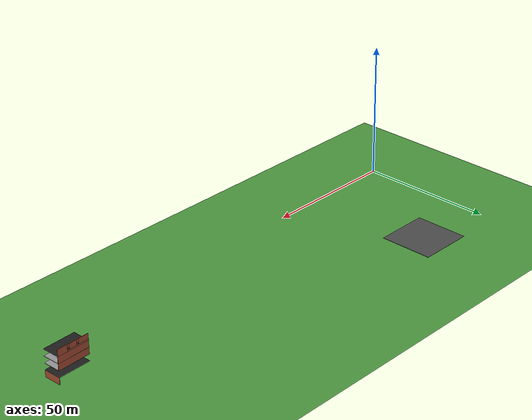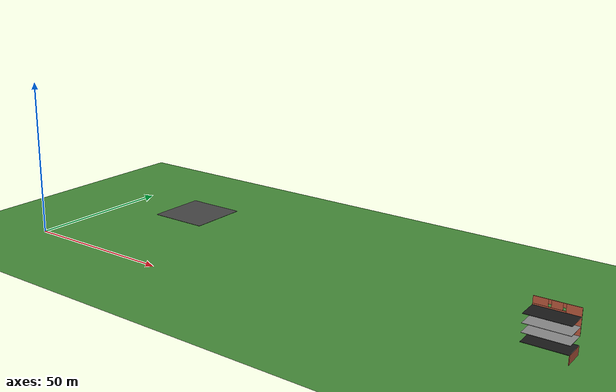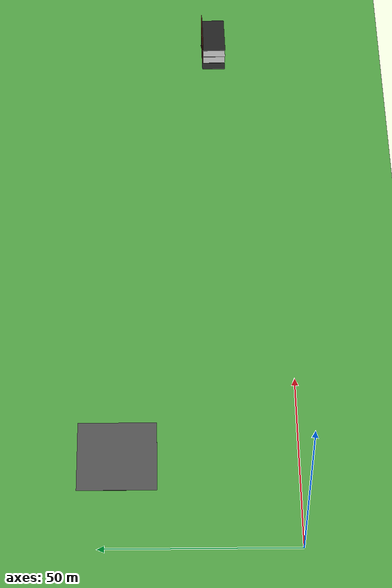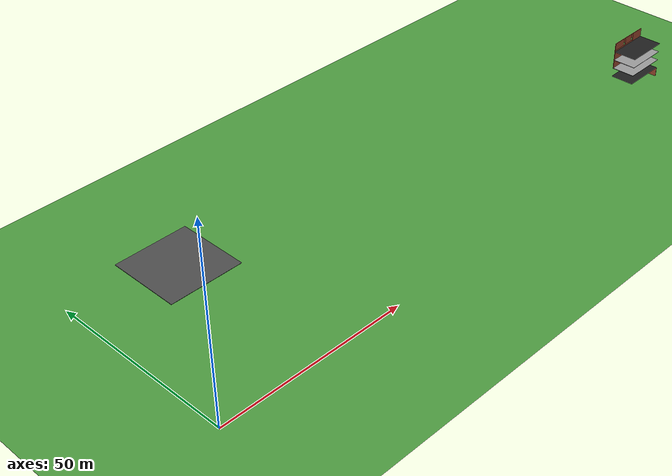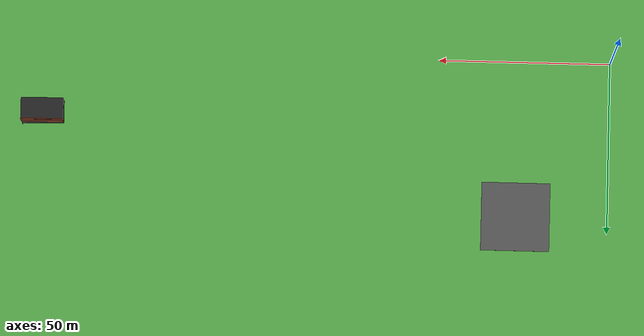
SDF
<sdf version="1.7">
 <world name="default">
  <model name="ground_plane">
   <static>1</static>
   <link name="link">
    <collision name="collision">
     <geometry><plane><normal>0 0 1</normal><size>100 100</size></plane></geometry>
     <surface>
      <contact><collide_bitmask>65535</collide_bitmask></contact>
      <friction><ode><mu>100</mu><mu2>50</mu2></ode></friction>
     </surface>
    </collision>
    <visual name="grass">
     <pose>0 0 -0.1 0 -0 0</pose>
     <cast_shadows>0</cast_shadows>
     <geometry><plane><normal>0 0 1</normal><size>1000 1000</size></plane></geometry>
     <material>
      <script><uri>file://media/materials/scripts/gazebo.material</uri><name>Gazebo/Grass</name></script>
     </material>
    </visual>
   </link>
  </model>
  <model name="asphalt_plane">
   <static>1</static>
   <link name="link">
    <collision name="collision"><geometry><box><size>20 20 0.1</size></box></geometry></collision>
    <visual name="visual">
     <cast_shadows>0</cast_shadows>
     <geometry><box><size>20 20 0.1</size></box></geometry>
     <material>
      <script>
       <uri>model://asphalt_plane/materials/scripts</uri>
       <uri>model://asphalt_plane/materials/textures</uri>
       <name>vrc/asphalt</name>
      </script>
     </material>
    </visual>
   </link>
   <pose>26.7323 45.4974 0 0 -0 0</pose>
  </model>
  <model name="my_building_1_clone">
   <link name="Floor_13">
    <pose>-4.12557 0 2.5 0 -0 0</pose>
    <inertial>
     <mass>1</mass>
     <inertia><ixx>1</ixx><ixy>0</ixy><ixz>0</ixz><iyy>1</iyy><iyz>0</iyz><izz>1</izz></inertia>
    </inertial>
    <visual name="Floor_13_Visual">
     <pose>0 0 0.05 0 -0 0</pose>
     <geometry><box><size>6.5 12.25 0.1</size></box></geometry>
     <material>
      <script><uri>file://media/materials/scripts/gazebo.material</uri><name>Gazebo/Black</name></script>
      <ambient>1 1 1 1</ambient>
      <shader type="pixel"><normal_map>__default__</normal_map></shader>
      <diffuse>0 0 0 1</diffuse>
      <specular>0.1 0.1 0.1 1</specular>
      <emissive>0 0 0 1</emissive>
     </material>
     <meta><layer>1</layer></meta>
    </visual>
    <collision name="Floor_13_Collision">
     <pose>0 0 0.05 0 -0 0</pose>
     <geometry><box><size>6.5 12.25 0.1</size></box></geometry>
     <surface>
      <friction>
       <ode><mu>1</mu><mu2>1</mu2><fdir1>0 0 0</fdir1><slip1>0</slip1><slip2>0</slip2></ode>
       <torsional>
        <coefficient>1</coefficient>
        <patch_radius>0</patch_radius>
        <surface_radius>0</surface_radius>
        <use_patch_radius>1</use_patch_radius>
        <ode><slip>0</slip></ode>
       </torsional>
      </friction>
      <bounce><restitution_coefficient>0</restitution_coefficient><threshold>1e+06</threshold></bounce>
      <contact>
       <collide_without_contact>0</collide_without_contact>
       <collide_without_contact_bitmask>1</collide_without_contact_bitmask>
       <collide_bitmask>1</collide_bitmask>
       <ode>
        <soft_cfm>0</soft_cfm>
        <soft_erp>0.2</soft_erp>
        <kp>1e+13</kp>
        <kd>1</kd>
        <max_vel>0.01</max_vel>
        <min_depth>0</min_depth>
       </ode>
       <bullet>
        <split_impulse>1</split_impulse>
        <split_impulse_penetration_threshold>-0.01</split_impulse_penetration_threshold>
        <soft_cfm>0</soft_cfm>
        <soft_erp>0.2</soft_erp>
        <kp>1e+13</kp>
        <kd>1</kd>
       </bullet>
      </contact>
     </surface>
    </collision>
   </link>
   <link name="Floor_14">
    <pose>-4.12557 0 5 0 -0 0</pose>
    <visual name="Floor_14_Visual">
     <pose>0 0 0.05 0 -0 0</pose>
     <geometry><box><size>6.5 12.25 0.1</size></box></geometry>
     <material>
      <script><uri>file://media/materials/scripts/gazebo.material</uri><name>Gazebo/Grey</name></script>
      <ambient>1 1 1 1</ambient>
      <shader type="pixel"/>
     </material>
     <meta><layer>2</layer></meta>
    </visual>
    <collision name="Floor_14_Collision">
     <pose>0 0 0.05 0 -0 0</pose>
     <geometry><box><size>6.5 12.25 0.1</size></box></geometry>
     <surface>
      <friction>
       <ode><mu>1</mu><mu2>1</mu2><fdir1>0 0 0</fdir1><slip1>0</slip1><slip2>0</slip2></ode>
       <torsional>
        <coefficient>1</coefficient>
        <patch_radius>0</patch_radius>
        <surface_radius>0</surface_radius>
        <use_patch_radius>1</use_patch_radius>
        <ode><slip>0</slip></ode>
       </torsional>
      </friction>
      <bounce><restitution_coefficient>0</restitution_coefficient><threshold>1e+06</threshold></bounce>
      <contact>
       <collide_without_contact>0</collide_without_contact>
       <collide_without_contact_bitmask>1</collide_without_contact_bitmask>
       <collide_bitmask>1</collide_bitmask>
       <ode>
        <soft_cfm>0</soft_cfm>
        <soft_erp>0.2</soft_erp>
        <kp>1e+13</kp>
        <kd>1</kd>
        <max_vel>0.01</max_vel>
        <min_depth>0</min_depth>
       </ode>
       <bullet>
        <split_impulse>1</split_impulse>
        <split_impulse_penetration_threshold>-0.01</split_impulse_penetration_threshold>
        <soft_cfm>0</soft_cfm>
        <soft_erp>0.2</soft_erp>
        <kp>1e+13</kp>
        <kd>1</kd>
       </bullet>
      </contact>
     </surface>
    </collision>
   </link>
   <link name="Floor_15">
    <pose>-4.12557 0 7.5 0 -0 0</pose>
    <visual name="Floor_15_Visual">
     <pose>0 0 0.05 0 -0 0</pose>
     <geometry><box><size>6.5 12.25 0.1</size></box></geometry>
     <material>
      <script><uri>file://media/materials/scripts/gazebo.material</uri><name>Gazebo/Grey</name></script>
      <ambient>1 1 1 1</ambient>
      <shader type="pixel"/>
     </material>
     <meta><layer>3</layer></meta>
    </visual>
    <collision name="Floor_15_Collision">
     <pose>0 0 0.05 0 -0 0</pose>
     <geometry><box><size>6.5 12.25 0.1</size></box></geometry>
     <surface>
      <friction>
       <ode><mu>1</mu><mu2>1</mu2><fdir1>0 0 0</fdir1><slip1>0</slip1><slip2>0</slip2></ode>
       <torsional>
        <coefficient>1</coefficient>
        <patch_radius>0</patch_radius>
        <surface_radius>0</surface_radius>
        <use_patch_radius>1</use_patch_radius>
        <ode><slip>0</slip></ode>
       </torsional>
      </friction>
      <bounce><restitution_coefficient>0</restitution_coefficient><threshold>1e+06</threshold></bounce>
      <contact>
       <collide_without_contact>0</collide_without_contact>
       <collide_without_contact_bitmask>1</collide_without_contact_bitmask>
       <collide_bitmask>1</collide_bitmask>
       <ode>
        <soft_cfm>0</soft_cfm>
        <soft_erp>0.2</soft_erp>
        <kp>1e+13</kp>
        <kd>1</kd>
        <max_vel>0.01</max_vel>
        <min_depth>0</min_depth>
       </ode>
       <bullet>
        <split_impulse>1</split_impulse>
        <split_impulse_penetration_threshold>-0.01</split_impulse_penetration_threshold>
        <soft_cfm>0</soft_cfm>
        <soft_erp>0.2</soft_erp>
        <kp>1e+13</kp>
        <kd>1</kd>
       </bullet>
      </contact>
     </surface>
    </collision>
   </link>
   <link name="Floor_16">
    <pose>-4.12557 0 10 0 -0 0</pose>
    <inertial>
     <mass>1</mass>
     <inertia><ixx>1</ixx><ixy>0</ixy><ixz>0</ixz><iyy>1</iyy><iyz>0</iyz><izz>1</izz></inertia>
    </inertial>
    <visual name="Floor_16_Visual">
     <pose>0 0 0.05 0 -0 0</pose>
     <geometry><box><size>6.5 12.25 0.1</size></box></geometry>
     <material>
      <script><uri>file://media/materials/scripts/gazebo.material</uri><name>Gazebo/Black</name></script>
      <ambient>1 1 1 1</ambient>
      <shader type="pixel"><normal_map>__default__</normal_map></shader>
      <diffuse>0 0 0 1</diffuse>
      <specular>0.1 0.1 0.1 1</specular>
      <emissive>0 0 0 1</emissive>
     </material>
     <meta><layer>4</layer></meta>
    </visual>
    <collision name="Floor_16_Collision">
     <pose>0 0 0.05 0 -0 0</pose>
     <geometry><box><size>6.5 12.25 0.1</size></box></geometry>
     <surface>
      <friction>
       <ode><mu>1</mu><mu2>1</mu2><fdir1>0 0 0</fdir1><slip1>0</slip1><slip2>0</slip2></ode>
       <torsional>
        <coefficient>1</coefficient>
        <patch_radius>0</patch_radius>
        <surface_radius>0</surface_radius>
        <use_patch_radius>1</use_patch_radius>
        <ode><slip>0</slip></ode>
       </torsional>
      </friction>
      <bounce><restitution_coefficient>0</restitution_coefficient><threshold>1e+06</threshold></bounce>
      <contact>
       <collide_without_contact>0</collide_without_contact>
       <collide_without_contact_bitmask>1</collide_without_contact_bitmask>
       <collide_bitmask>1</collide_bitmask>
       <ode>
        <soft_cfm>0</soft_cfm>
        <soft_erp>0.2</soft_erp>
        <kp>1e+13</kp>
        <kd>1</kd>
        <max_vel>0.01</max_vel>
        <min_depth>0</min_depth>
       </ode>
       <bullet>
        <split_impulse>1</split_impulse>
        <split_impulse_penetration_threshold>-0.01</split_impulse_penetration_threshold>
        <soft_cfm>0</soft_cfm>
        <soft_erp>0.2</soft_erp>
        <kp>1e+13</kp>
        <kd>1</kd>
       </bullet>
      </contact>
     </surface>
    </collision>
   </link>
   <link name="Wall_18">
    <pose>-4.12557 -6.05 0 0 -0 0</pose>
    <visual name="Wall_18_Visual">
     <pose>0 0 1.25 0 -0 0</pose>
     <geometry><box><size>6.5 0.15 2.5</size></box></geometry>
     <material>
      <script><uri>file://media/materials/scripts/gazebo.material</uri><name>Gazebo/Bricks</name></script>
      <ambient>1 1 1 1</ambient>
      <shader type="pixel"/>
     </material>
     <meta><layer>0</layer></meta>
    </visual>
    <collision name="Wall_18_Collision">
     <pose>0 0 1.25 0 -0 0</pose>
     <geometry><box><size>6.5 0.15 2.5</size></box></geometry>
     <surface>
      <friction>
       <ode><mu>1</mu><mu2>1</mu2><fdir1>0 0 0</fdir1><slip1>0</slip1><slip2>0</slip2></ode>
       <torsional>
        <coefficient>1</coefficient>
        <patch_radius>0</patch_radius>
        <surface_radius>0</surface_radius>
        <use_patch_radius>1</use_patch_radius>
        <ode><slip>0</slip></ode>
       </torsional>
      </friction>
      <bounce><restitution_coefficient>0</restitution_coefficient><threshold>1e+06</threshold></bounce>
      <contact>
       <collide_without_contact>0</collide_without_contact>
       <collide_without_contact_bitmask>1</collide_without_contact_bitmask>
       <collide_bitmask>1</collide_bitmask>
       <ode>
        <soft_cfm>0</soft_cfm>
        <soft_erp>0.2</soft_erp>
        <kp>1e+13</kp>
        <kd>1</kd>
        <max_vel>0.01</max_vel>
        <min_depth>0</min_depth>
       </ode>
       <bullet>
        <split_impulse>1</split_impulse>
        <split_impulse_penetration_threshold>-0.01</split_impulse_penetration_threshold>
        <soft_cfm>0</soft_cfm>
        <soft_erp>0.2</soft_erp>
        <kp>1e+13</kp>
        <kd>1</kd>
       </bullet>
      </contact>
     </surface>
    </collision>
   </link>
   <link name="Wall_80">
    <pose>-0.950574 0 5 0 -0 1.5708</pose>
    <visual name="Wall_80_Visual">
     <pose>0 0 1.25 0 -0 0</pose>
     <geometry><box><size>12.25 0.15 2.5</size></box></geometry>
     <material>
      <script><uri>file://media/materials/scripts/gazebo.material</uri><name>Gazebo/Bricks</name></script>
      <ambient>1 1 1 1</ambient>
      <shader type="pixel"/>
     </material>
     <meta><layer>2</layer></meta>
    </visual>
    <collision name="Wall_80_Collision">
     <pose>0 0 1.25 0 -0 0</pose>
     <geometry><box><size>12.25 0.15 2.5</size></box></geometry>
     <surface>
      <friction>
       <ode><mu>1</mu><mu2>1</mu2><fdir1>0 0 0</fdir1><slip1>0</slip1><slip2>0</slip2></ode>
       <torsional>
        <coefficient>1</coefficient>
        <patch_radius>0</patch_radius>
        <surface_radius>0</surface_radius>
        <use_patch_radius>1</use_patch_radius>
        <ode><slip>0</slip></ode>
       </torsional>
      </friction>
      <bounce><restitution_coefficient>0</restitution_coefficient><threshold>1e+06</threshold></bounce>
      <contact>
       <collide_without_contact>0</collide_without_contact>
       <collide_without_contact_bitmask>1</collide_without_contact_bitmask>
       <collide_bitmask>1</collide_bitmask>
       <ode>
        <soft_cfm>0</soft_cfm>
        <soft_erp>0.2</soft_erp>
        <kp>1e+13</kp>
        <kd>1</kd>
        <max_vel>0.01</max_vel>
        <min_depth>0</min_depth>
       </ode>
       <bullet>
        <split_impulse>1</split_impulse>
        <split_impulse_penetration_threshold>-0.01</split_impulse_penetration_threshold>
        <soft_cfm>0</soft_cfm>
        <soft_erp>0.2</soft_erp>
        <kp>1e+13</kp>
        <kd>1</kd>
       </bullet>
      </contact>
     </surface>
    </collision>
   </link>
   <link name="Wall_84">
    <pose>-0.950574 0 7.5 0 -0 1.5708</pose>
    <visual name="Wall_84_Visual">
     <pose>0 0 1.25 0 -0 0</pose>
     <geometry><box><size>12.25 0.15 2.5</size></box></geometry>
     <material>
      <script><uri>file://media/materials/scripts/gazebo.material</uri><name>Gazebo/Bricks</name></script>
      <ambient>1 1 1 1</ambient>
      <shader type="pixel"/>
     </material>
     <meta><layer>3</layer></meta>
    </visual>
    <collision name="Wall_84_Collision">
     <pose>0 0 1.25 0 -0 0</pose>
     <geometry><box><size>12.25 0.15 2.5</size></box></geometry>
     <surface>
      <friction>
       <ode><mu>1</mu><mu2>1</mu2><fdir1>0 0 0</fdir1><slip1>0</slip1><slip2>0</slip2></ode>
       <torsional>
        <coefficient>1</coefficient>
        <patch_radius>0</patch_radius>
        <surface_radius>0</surface_radius>
        <use_patch_radius>1</use_patch_radius>
        <ode><slip>0</slip></ode>
       </torsional>
      </friction>
      <bounce><restitution_coefficient>0</restitution_coefficient><threshold>1e+06</threshold></bounce>
      <contact>
       <collide_without_contact>0</collide_without_contact>
       <collide_without_contact_bitmask>1</collide_without_contact_bitmask>
       <collide_bitmask>1</collide_bitmask>
       <ode>
        <soft_cfm>0</soft_cfm>
        <soft_erp>0.2</soft_erp>
        <kp>1e+13</kp>
        <kd>1</kd>
        <max_vel>0.01</max_vel>
        <min_depth>0</min_depth>
       </ode>
       <bullet>
        <split_impulse>1</split_impulse>
        <split_impulse_penetration_threshold>-0.01</split_impulse_penetration_threshold>
        <soft_cfm>0</soft_cfm>
        <soft_erp>0.2</soft_erp>
        <kp>1e+13</kp>
        <kd>1</kd>
       </bullet>
      </contact>
     </surface>
    </collision>
   </link>
   <link name="Wall_88">
    <pose>-0.950574 0 10 0 -0 1.5708</pose>
    <visual name="Wall_88_Visual_1">
     <pose>1.94755 0 0.25 0 -0 0</pose>
     <geometry><box><size>8.35491 0.15 0.5</size></box></geometry>
     <material>
      <script><uri>file://media/materials/scripts/gazebo.material</uri><name>Gazebo/Bricks</name></script>
      <ambient>1 1 1 1</ambient>
      <shader type="pixel"/>
     </material>
     <meta><layer>4</layer></meta>
    </visual>
    <visual name="Wall_88_Visual_2">
     <pose>-0.007793 0 1.5 0 -0 0</pose>
     <geometry><box><size>2.84423 0.15 2</size></box></geometry>
     <material>
      <script><uri>file://media/materials/scripts/gazebo.material</uri><name>Gazebo/Bricks</name></script>
      <ambient>1 1 1 1</ambient>
      <shader type="pixel"/>
     </material>
     <meta><layer>4</layer></meta>
    </visual>
    <visual name="Wall_88_Visual_4">
     <pose>-1.82991 0 1.9 0 -0 0</pose>
     <geometry><box><size>0.8 0.15 1.2</size></box></geometry>
     <material>
      <script><uri>file://media/materials/scripts/gazebo.material</uri><name>Gazebo/Bricks</name></script>
      <ambient>1 1 1 1</ambient>
      <shader type="pixel"/>
     </material>
     <meta><layer>4</layer></meta>
    </visual>
    <visual name="Wall_88_Visual_5">
     <pose>1.81432 0 1.9 0 -0 0</pose>
     <geometry><box><size>0.8 0.15 1.2</size></box></geometry>
     <material>
      <script><uri>file://media/materials/scripts/gazebo.material</uri><name>Gazebo/Bricks</name></script>
      <ambient>1 1 1 1</ambient>
      <shader type="pixel"/>
     </material>
     <meta><layer>4</layer></meta>
    </visual>
    <visual name="Wall_88_Visual_3">
     <pose>4.16966 0 1.5 0 -0 0</pose>
     <geometry><box><size>3.91068 0.15 2</size></box></geometry>
     <material>
      <script><uri>file://media/materials/scripts/gazebo.material</uri><name>Gazebo/Bricks</name></script>
      <ambient>1 1 1 1</ambient>
      <shader type="pixel"/>
     </material>
     <meta><layer>4</layer></meta>
    </visual>
    <visual name="Wall_88_Visual_0">
     <pose>-4.17745 0 1.25 0 -0 0</pose>
     <geometry><box><size>3.89509 0.15 2.5</size></box></geometry>
     <material>
      <script><uri>file://media/materials/scripts/gazebo.material</uri><name>Gazebo/Bricks</name></script>
      <ambient>1 1 1 1</ambient>
      <shader type="pixel"/>
     </material>
     <meta><layer>4</layer></meta>
    </visual>
    <collision name="Wall_88_Collision_4">
     <pose>-1.82991 0 1.9 0 -0 0</pose>
     <geometry><box><size>0.8 0.15 1.2</size></box></geometry>
     <surface>
      <friction>
       <ode><mu>1</mu><mu2>1</mu2><fdir1>0 0 0</fdir1><slip1>0</slip1><slip2>0</slip2></ode>
       <torsional>
        <coefficient>1</coefficient>
        <patch_radius>0</patch_radius>
        <surface_radius>0</surface_radius>
        <use_patch_radius>1</use_patch_radius>
        <ode><slip>0</slip></ode>
       </torsional>
      </friction>
      <bounce><restitution_coefficient>0</restitution_coefficient><threshold>1e+06</threshold></bounce>
      <contact>
       <collide_without_contact>0</collide_without_contact>
       <collide_without_contact_bitmask>1</collide_without_contact_bitmask>
       <collide_bitmask>1</collide_bitmask>
       <ode>
        <soft_cfm>0</soft_cfm>
        <soft_erp>0.2</soft_erp>
        <kp>1e+13</kp>
        <kd>1</kd>
        <max_vel>0.01</max_vel>
        <min_depth>0</min_depth>
       </ode>
       <bullet>
        <split_impulse>1</split_impulse>
        <split_impulse_penetration_threshold>-0.01</split_impulse_penetration_threshold>
        <soft_cfm>0</soft_cfm>
        <soft_erp>0.2</soft_erp>
        <kp>1e+13</kp>
        <kd>1</kd>
       </bullet>
      </contact>
     </surface>
    </collision>
    <collision name="Wall_88_Collision_5">
     <pose>1.81432 0 1.9 0 -0 0</pose>
     <geometry><box><size>0.8 0.15 1.2</size></box></geometry>
     <surface>
      <friction>
       <ode><mu>1</mu><mu2>1</mu2><fdir1>0 0 0</fdir1><slip1>0</slip1><slip2>0</slip2></ode>
       <torsional>
        <coefficient>1</coefficient>
        <patch_radius>0</patch_radius>
        <surface_radius>0</surface_radius>
        <use_patch_radius>1</use_patch_radius>
        <ode><slip>0</slip></ode>
       </torsional>
      </friction>
      <bounce><restitution_coefficient>0</restitution_coefficient><threshold>1e+06</threshold></bounce>
      <contact>
       <collide_without_contact>0</collide_without_contact>
       <collide_without_contact_bitmask>1</collide_without_contact_bitmask>
       <collide_bitmask>1</collide_bitmask>
       <ode>
        <soft_cfm>0</soft_cfm>
        <soft_erp>0.2</soft_erp>
        <kp>1e+13</kp>
        <kd>1</kd>
        <max_vel>0.01</max_vel>
        <min_depth>0</min_depth>
       </ode>
       <bullet>
        <split_impulse>1</split_impulse>
        <split_impulse_penetration_threshold>-0.01</split_impulse_penetration_threshold>
        <soft_cfm>0</soft_cfm>
        <soft_erp>0.2</soft_erp>
        <kp>1e+13</kp>
        <kd>1</kd>
       </bullet>
      </contact>
     </surface>
    </collision>
    <collision name="Wall_88_Collision_2">
     <pose>-0.007793 0 1.5 0 -0 0</pose>
     <geometry><box><size>2.84423 0.15 2</size></box></geometry>
     <surface>
      <friction>
       <ode><mu>1</mu><mu2>1</mu2><fdir1>0 0 0</fdir1><slip1>0</slip1><slip2>0</slip2></ode>
       <torsional>
        <coefficient>1</coefficient>
        <patch_radius>0</patch_radius>
        <surface_radius>0</surface_radius>
        <use_patch_radius>1</use_patch_radius>
        <ode><slip>0</slip></ode>
       </torsional>
      </friction>
      <bounce><restitution_coefficient>0</restitution_coefficient><threshold>1e+06</threshold></bounce>
      <contact>
       <collide_without_contact>0</collide_without_contact>
       <collide_without_contact_bitmask>1</collide_without_contact_bitmask>
       <collide_bitmask>1</collide_bitmask>
       <ode>
        <soft_cfm>0</soft_cfm>
        <soft_erp>0.2</soft_erp>
        <kp>1e+13</kp>
        <kd>1</kd>
        <max_vel>0.01</max_vel>
        <min_depth>0</min_depth>
       </ode>
       <bullet>
        <split_impulse>1</split_impulse>
        <split_impulse_penetration_threshold>-0.01</split_impulse_penetration_threshold>
        <soft_cfm>0</soft_cfm>
        <soft_erp>0.2</soft_erp>
        <kp>1e+13</kp>
        <kd>1</kd>
       </bullet>
      </contact>
     </surface>
    </collision>
    <collision name="Wall_88_Collision_0">
     <pose>-4.17745 0 1.25 0 -0 0</pose>
     <geometry><box><size>3.89509 0.15 2.5</size></box></geometry>
     <surface>
      <friction>
       <ode><mu>1</mu><mu2>1</mu2><fdir1>0 0 0</fdir1><slip1>0</slip1><slip2>0</slip2></ode>
       <torsional>
        <coefficient>1</coefficient>
        <patch_radius>0</patch_radius>
        <surface_radius>0</surface_radius>
        <use_patch_radius>1</use_patch_radius>
        <ode><slip>0</slip></ode>
       </torsional>
      </friction>
      <bounce><restitution_coefficient>0</restitution_coefficient><threshold>1e+06</threshold></bounce>
      <contact>
       <collide_without_contact>0</collide_without_contact>
       <collide_without_contact_bitmask>1</collide_without_contact_bitmask>
       <collide_bitmask>1</collide_bitmask>
       <ode>
        <soft_cfm>0</soft_cfm>
        <soft_erp>0.2</soft_erp>
        <kp>1e+13</kp>
        <kd>1</kd>
        <max_vel>0.01</max_vel>
        <min_depth>0</min_depth>
       </ode>
       <bullet>
        <split_impulse>1</split_impulse>
        <split_impulse_penetration_threshold>-0.01</split_impulse_penetration_threshold>
        <soft_cfm>0</soft_cfm>
        <soft_erp>0.2</soft_erp>
        <kp>1e+13</kp>
        <kd>1</kd>
       </bullet>
      </contact>
     </surface>
    </collision>
    <collision name="Wall_88_Collision_1">
     <pose>1.94755 0 0.25 0 -0 0</pose>
     <geometry><box><size>8.35491 0.15 0.5</size></box></geometry>
     <surface>
      <friction>
       <ode><mu>1</mu><mu2>1</mu2><fdir1>0 0 0</fdir1><slip1>0</slip1><slip2>0</slip2></ode>
       <torsional>
        <coefficient>1</coefficient>
        <patch_radius>0</patch_radius>
        <surface_radius>0</surface_radius>
        <use_patch_radius>1</use_patch_radius>
        <ode><slip>0</slip></ode>
       </torsional>
      </friction>
      <bounce><restitution_coefficient>0</restitution_coefficient><threshold>1e+06</threshold></bounce>
      <contact>
       <collide_without_contact>0</collide_without_contact>
       <collide_without_contact_bitmask>1</collide_without_contact_bitmask>
       <collide_bitmask>1</collide_bitmask>
       <ode>
        <soft_cfm>0</soft_cfm>
        <soft_erp>0.2</soft_erp>
        <kp>1e+13</kp>
        <kd>1</kd>
        <max_vel>0.01</max_vel>
        <min_depth>0</min_depth>
       </ode>
       <bullet>
        <split_impulse>1</split_impulse>
        <split_impulse_penetration_threshold>-0.01</split_impulse_penetration_threshold>
        <soft_cfm>0</soft_cfm>
        <soft_erp>0.2</soft_erp>
        <kp>1e+13</kp>
        <kd>1</kd>
       </bullet>
      </contact>
     </surface>
    </collision>
    <collision name="Wall_88_Collision_3">
     <pose>4.16966 0 1.5 0 -0 0</pose>
     <geometry><box><size>3.91068 0.15 2</size></box></geometry>
     <surface>
      <friction>
       <ode><mu>1</mu><mu2>1</mu2><fdir1>0 0 0</fdir1><slip1>0</slip1><slip2>0</slip2></ode>
       <torsional>
        <coefficient>1</coefficient>
        <patch_radius>0</patch_radius>
        <surface_radius>0</surface_radius>
        <use_patch_radius>1</use_patch_radius>
        <ode><slip>0</slip></ode>
       </torsional>
      </friction>
      <bounce><restitution_coefficient>0</restitution_coefficient><threshold>1e+06</threshold></bounce>
      <contact>
       <collide_without_contact>0</collide_without_contact>
       <collide_without_contact_bitmask>1</collide_without_contact_bitmask>
       <collide_bitmask>1</collide_bitmask>
       <ode>
        <soft_cfm>0</soft_cfm>
        <soft_erp>0.2</soft_erp>
        <kp>1e+13</kp>
        <kd>1</kd>
        <max_vel>0.01</max_vel>
        <min_depth>0</min_depth>
       </ode>
       <bullet>
        <split_impulse>1</split_impulse>
        <split_impulse_penetration_threshold>-0.01</split_impulse_penetration_threshold>
        <soft_cfm>0</soft_cfm>
        <soft_erp>0.2</soft_erp>
        <kp>1e+13</kp>
        <kd>1</kd>
       </bullet>
      </contact>
     </surface>
    </collision>
   </link>
   <static>1</static>
   <pose>165.249 22.7467 0 0 -0 1.58902</pose>
  </model>
 </world>
</sdf>
